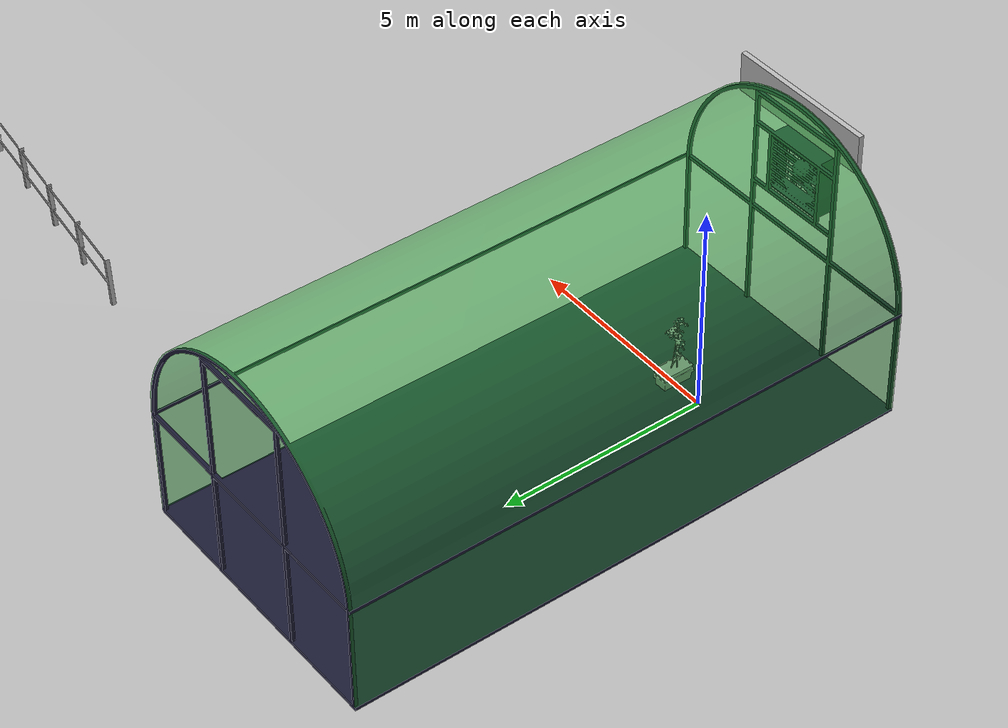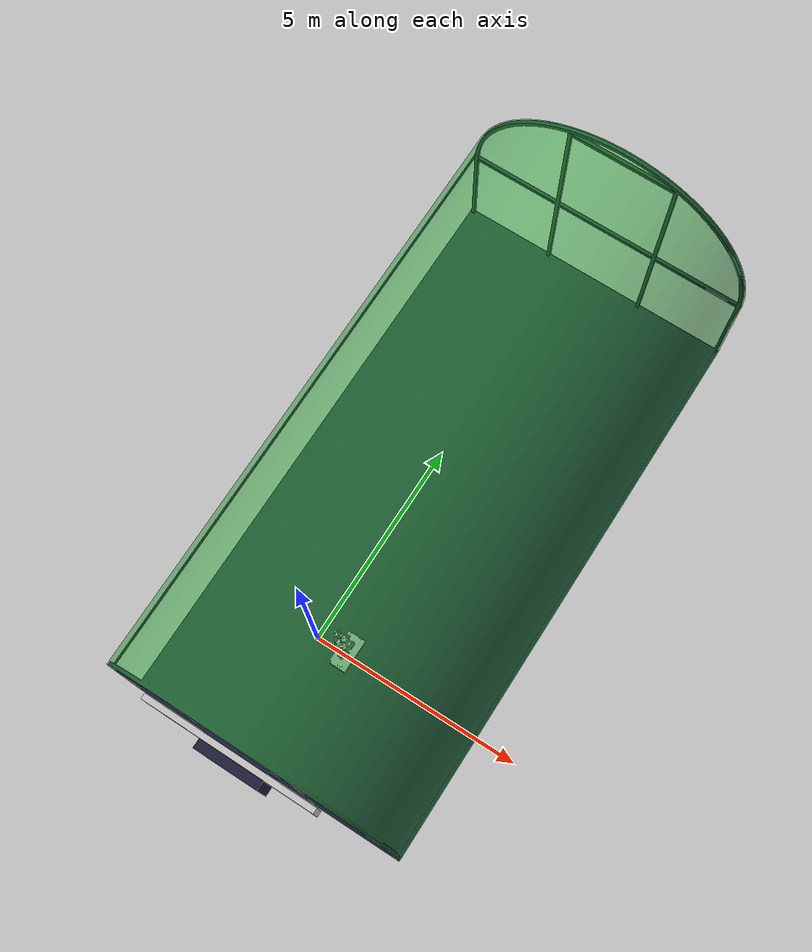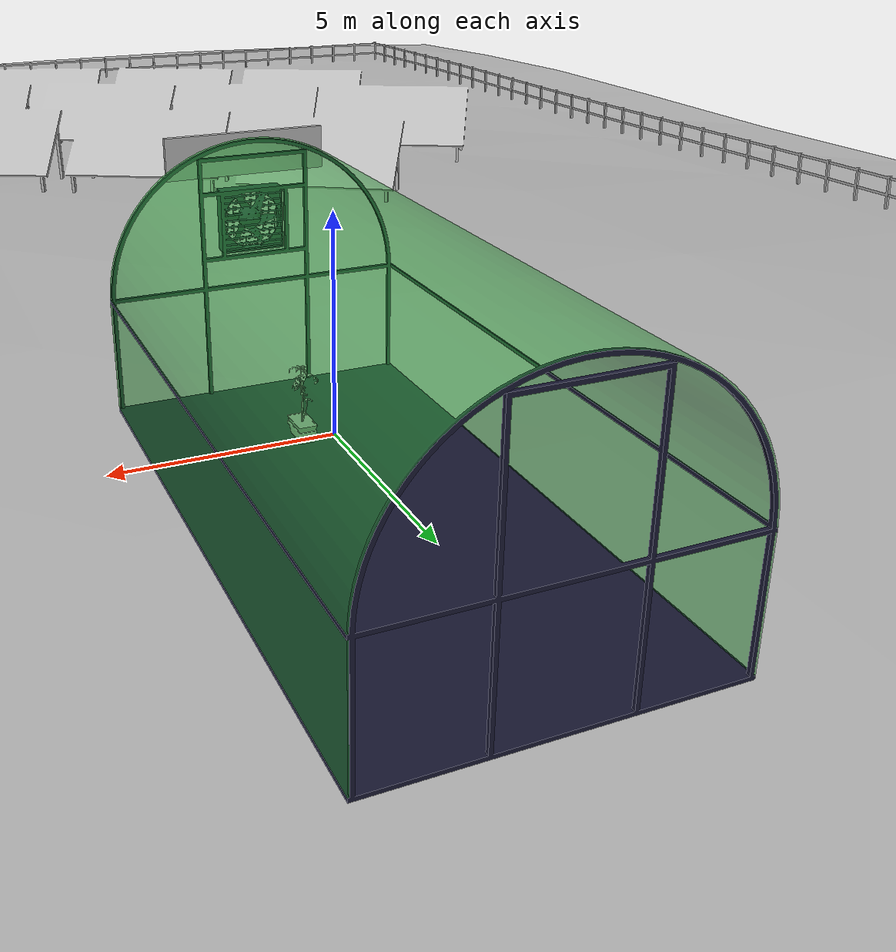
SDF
<?xml version="1.0"?>
<sdf version="1.6">

	<world name="default">

    <plugin name="ros_link_attacher_plugin" filename="libgazebo_ros_link_attacher.so"/>

    <light name="light0" type="directional">
      <pose frame="">0 -18.818 8 0.75 -0 0</pose>
      <diffuse>0.5 0.5 0.5 1</diffuse>
      <specular>0.1 0.1 0.1 1</specular>
      <direction>0.1 0.1 -0.9</direction>
      <attenuation>
        <range>20</range>
        <constant>0.5</constant>
        <linear>0.01</linear>
        <quadratic>0.001</quadratic>
      </attenuation>
      <cast_shadows>0</cast_shadows>
    </light>

    <light name="light1" type="directional">
      <pose frame="">0 -1.26453 6 0 -0 0</pose>
      <diffuse>0.5 0.5 0.5 1</diffuse>
      <specular>0.1 0.1 0.1 1</specular>
      <direction>0.1 0.1 -0.9</direction>
      <attenuation>
        <range>20</range>
        <constant>0.5</constant>
        <linear>0.01</linear>
        <quadratic>0.001</quadratic>
      </attenuation>
      <cast_shadows>0</cast_shadows>
    </light>

    <light name="light2" type="directional">
      <pose frame="">>0 7.3198 6 0 -0 0</pose>
      <diffuse>0.5 0.5 0.5 1</diffuse>
      <specular>0.1 0.1 0.1 1</specular>
      <direction>0.1 0.1 -0.9</direction>
      <attenuation>
        <range>20</range>
        <constant>0.5</constant>
        <linear>0.01</linear>
        <quadratic>0.001</quadratic>
      </attenuation>
      <cast_shadows>0</cast_shadows>
    </light>

    <light name="light3" type="directional">
      <pose frame="">3.9239 1.64974 4 0 1.2 0</pose>
      <diffuse>0.5 0.5 0.5 1</diffuse>
      <specular>0.1 0.1 0.1 1</specular>
      <direction>0.1 0.1 -0.9</direction>
      <attenuation>
        <range>20</range>
        <constant>0.5</constant>
        <linear>0.01</linear>
        <quadratic>0.001</quadratic>
      </attenuation>
      <cast_shadows>0</cast_shadows>
    </light>

    <light name="light4" type="directional">
      <pose frame="">-2.5 4.649 4 0 -0.95 0</pose>
      <diffuse>0.5 0.5 0.5 1</diffuse>
      <specular>0.1 0.1 0.1 1</specular>
      <direction>0.1 0.1 -0.9</direction>
      <attenuation>
        <range>20</range>
        <constant>0.5</constant>
        <linear>0.01</linear>
        <quadratic>0.001</quadratic>
      </attenuation>
      <cast_shadows>0</cast_shadows>
    </light>

    <light name="light5" type="directional">
      <pose frame="">0.454419 12.4783 5 -0.8 0 0</pose>
      <diffuse>0.5 0.5 0.5 1</diffuse>
      <specular>0.1 0.1 0.1 1</specular>
      <direction>0.1 0.1 -0.9</direction>
      <attenuation>
        <range>20</range>
        <constant>0.5</constant>
        <linear>0.01</linear>
        <quadratic>0.001</quadratic>
      </attenuation>
      <cast_shadows>0</cast_shadows>
    </light>

		<scene>
		<shadows>false</shadows>
		<grid>false</grid>
		<sky>
		<clouds>
		  <speed>4</speed>
		</clouds>
		</sky>
		</scene>

		<include>
		<uri>model://farm1</uri>
		<pose>1.424045 -8.25 0.15 -0.02 0.029 0</pose>
		</include>

		<include>
		<uri>model://green_house</uri>
		<pose>10.523 -2.987 0.1 1.57159 -0.001593 -3.14159</pose>
		</include>

    <include>
    <uri>model://task_3_2</uri>
    <name>plant00</name>
    <pose>0.77 0.04 0.49 0 0 5.34188268943</pose>
    </include>

    <include>
    <uri>model://trough</uri>
    <name>trough00</name>
    <pose>0.77 0.04 0.09 1.57 0 1.57</pose>
    </include>

  </world>

</sdf>

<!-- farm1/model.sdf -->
<sdf version="1.6">
  <model name="farm">
    <static>true</static>
    <link name="link">
      <collision name="colision1">
        <pose>0 0 0 0 0 0 </pose>
          <geometry>
            <box><size>2.32 1 1</size></box>
          </geometry>

      </collision>

      <visual name="visual1">
        <cast_shadows>false</cast_shadows>
	<pose> 0 0 0 0 0 0</pose>
        <geometry>
          <mesh>
            <uri>model://farm1/meshes/agriculture_world.dae</uri>

          </mesh>
        </geometry>
      </visual>

    </link>
  </model>
</sdf>

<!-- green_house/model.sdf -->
<sdf version="1.6">
  <model name="green_house">
    <static>true</static>

    <link name="link">
      <collision name="collision">
        <geometry>
          <mesh>
             <scale>0.001 0.001 0.001</scale>
            <uri>file://green_house/meshes/greenhouse_eyantra_glass.stl</uri>
          </mesh>
        </geometry>
      </collision>
      <visual name="branch">
        <geometry>
          <mesh>
                <scale>0.001 0.001 0.001</scale>
            <uri>file://green_house/meshes/greenhouse_eyantra_glass.stl</uri>

          </mesh>
        </geometry>

<material>
  <script>
    <name>Gazebo/GreenTransparent</name>
    <uri>file://media/materials/scripts/gazebo.material</uri>
  </script>
</material>

      </visual>
    </link>

    <link name="link2">
      <collision name="collision2">
        <geometry>
          <mesh>
             <scale>0.001 0.001 0.001</scale>
            <uri>file://green_house/meshes/greenhouse_eyantra_skeleton.stl</uri>
          </mesh>
        </geometry>
      </collision>
      <visual name="branch2">
        <geometry>
          <mesh>
                <scale>0.001 0.001 0.001</scale>
            <uri>file://green_house/meshes/greenhouse_eyantra_skeleton.stl</uri>

          </mesh>
        </geometry>

      <material>
          <ambient>0.1 0.1 0.1 1</ambient>
          <diffuse>0.1 0.1 0.2 1</diffuse>
          <specular>0 0 0 0</specular>
          <emissive>0 0 0 1</emissive>
        </material>

      </visual>
    </link>

    <link name="link3">
 <pose>9.7 5.5 -0.2 0 3.14 0</pose>
      <collision name="logo">
        <geometry>
          <mesh>
       <scale>400 400 400</scale>
            <uri>file://green_house/meshes/logo2.dae</uri>
          </mesh>
        </geometry>
      </collision>
      <visual name="logo_c">
        <geometry>
          <mesh>
  <scale>400 400 400</scale>
            <uri>file://green_house/meshes/logo2.dae</uri>

          </mesh>
        </geometry>

      </visual>
    </link>

        <joint name="logo" type="fixed">
            <pose>0 0 0 0 0 0</pose>
            <child>link3</child>
            <parent>link2</parent>

        </joint>

  </model>
</sdf>

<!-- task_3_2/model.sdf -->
<sdf version="1.6">
    <model name="task_2">
  <static>false</static>
      <link name="tomato_plant_link">

        <inertial>
          <pose>0 0 0 0 0 0</pose>
          <mass>20</mass>
          <inertia>
            <ixx>0.2006</ixx>
            <ixy>0</ixy>
            <ixz>0</ixz>
            <iyy>0.2006</iyy>
            <iyz>0</iyz>
            <izz>0.4</izz>
          </inertia>
        </inertial>

        <visual name="visual">
          <pose>0 0 0 0 0 0</pose>
          <geometry>
            <mesh><uri>model://tomato_plant/meshes/tomato_plant.obj</uri></mesh>
          </geometry>
        </visual>
        <collision name="collision">
          <pose>0 0 0.01 0 0 0</pose>
       <geometry>
          <cylinder>
            <radius>0.2</radius>
            <length>0.02</length>
          </cylinder>
        </geometry>
        </collision>
      </link>

<!-- tomato link -->

      <link name="t_link_2">
        <pose>0.062027 -0.170581 0.614534 0 0 0</pose>
        <inertial>
          <mass>0.001</mass>
          <inertia>
            <ixx>3.6e-03</ixx>
            <ixy>0</ixy>
            <ixz>0</ixz>
            <iyy>3.6e-03</iyy>
            <iyz>0</iyz>
            <izz>3.6e-03</izz>
          </inertia>
        </inertial>

      <surface>
        <friction>
          <ode>
            <mu>100000</mu>
            <mu2>100000</mu2>
          </ode>
        </friction>
      </surface>

        <collision name="collision">
          <geometry>
            <sphere><radius>0.02</radius></sphere>
          </geometry>
        </collision>
        <visual name="visual">
          <geometry>
            <mesh><uri>model://red_tomato/meshes/red_tomato.obj</uri></mesh>
          </geometry>
        </visual>
      </link>
      <joint name="t_joint_2" type="fixed">
        <parent>tomato_plant_link</parent>
        <child>t_link_2</child>
        <axis>
          <xyz>0 0 1</xyz>
          <use_parent_model_frame>true</use_parent_model_frame>
        </axis>
        <sensor name="force_torque" type="force_torque">
          <always_on>true</always_on>
          <update_rate>100</update_rate>
          <plugin name="breakable_2" filename="libBreakableJointPlugin.so">
            <breaking_force_N>10</breaking_force_N>
          </plugin>
        </sensor>
      </joint>

      <link name="t_link_9">
        <pose>-0.27 -0.146 0.885 0 0 0</pose>
        <inertial>
          <mass>0.001</mass>
          <inertia>
            <ixx>3.6e-03</ixx>
            <ixy>0</ixy>
            <ixz>0</ixz>
            <iyy>3.6e-03</iyy>
            <iyz>0</iyz>
            <izz>3.6e-03</izz>
          </inertia>
        </inertial>

      <surface>
        <friction>
          <ode>
            <mu>100000</mu>
            <mu2>100000</mu2>
          </ode>
        </friction>
      </surface>
        <collision name="collision">
          <geometry>
            <sphere><radius>0.02</radius></sphere>
          </geometry>
        </collision>
        <visual name="visual">
          <geometry>
            <mesh><uri>model://red_tomato/meshes/red_tomato.obj</uri></mesh>
          </geometry>
        </visual>
      </link>
      <joint name="t_joint_9" type="fixed">
        <parent>tomato_plant_link</parent>
        <child>t_link_9</child>
        <axis>
          <xyz>0 0 1</xyz>
          <use_parent_model_frame>true</use_parent_model_frame>
        </axis>
        <sensor name="force_torque" type="force_torque">
          <always_on>true</always_on>
          <update_rate>100</update_rate>
          <plugin name="breakable_9" filename="libBreakableJointPlugin.so">
            <breaking_force_N>10</breaking_force_N>
          </plugin>
        </sensor>
      </joint>
    </model>
</sdf>

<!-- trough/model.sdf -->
<sdf version="1.6">
    <model name="trough">
	   <static>true</static>
      <link name="trough_link">

        <visual name="visual">
          <geometry>
            <mesh><uri>model://trough/meshes/truf_brick.obj</uri></mesh>
          </geometry>
        </visual>

        <collision name="collision">
          <pose>0 0.3 0 0 0 0</pose>
          <geometry>
          <box>
            <size>0.75 0.2 0.42</size>
          </box>
           </geometry>
        </collision>
      </link>

    </model>
</sdf>
